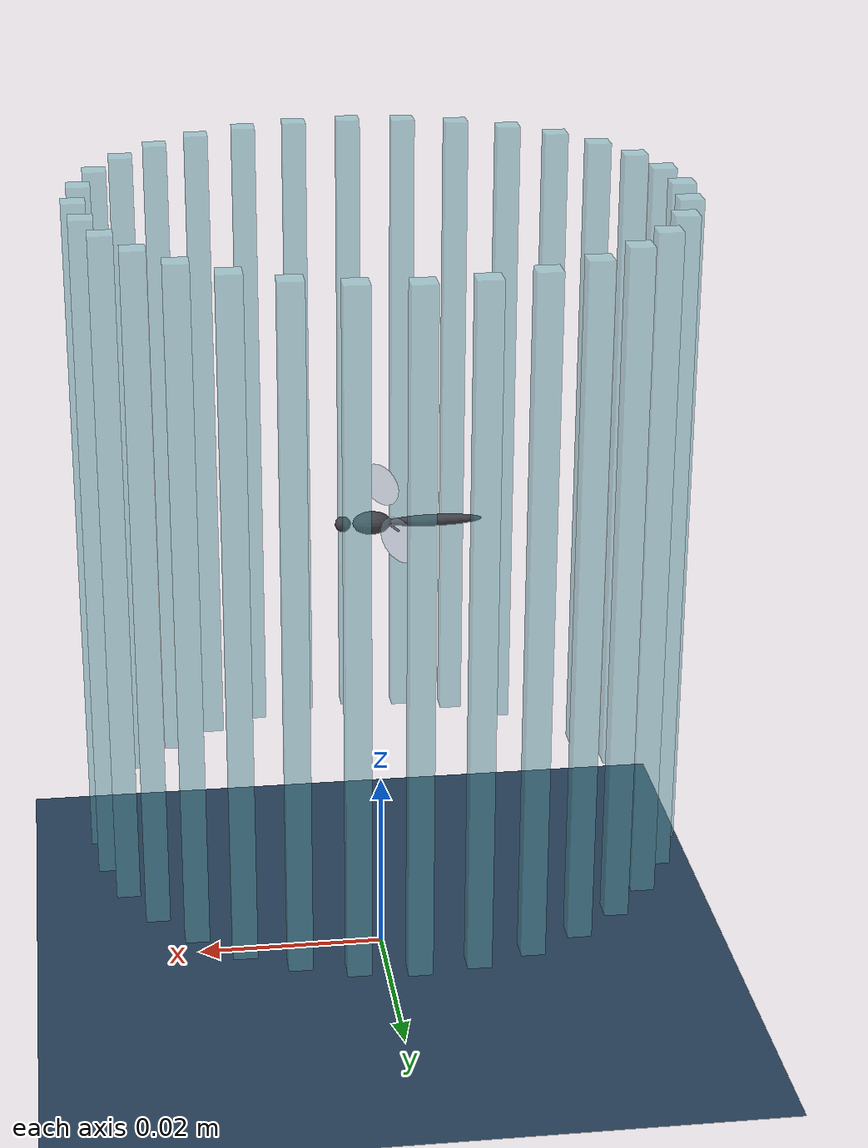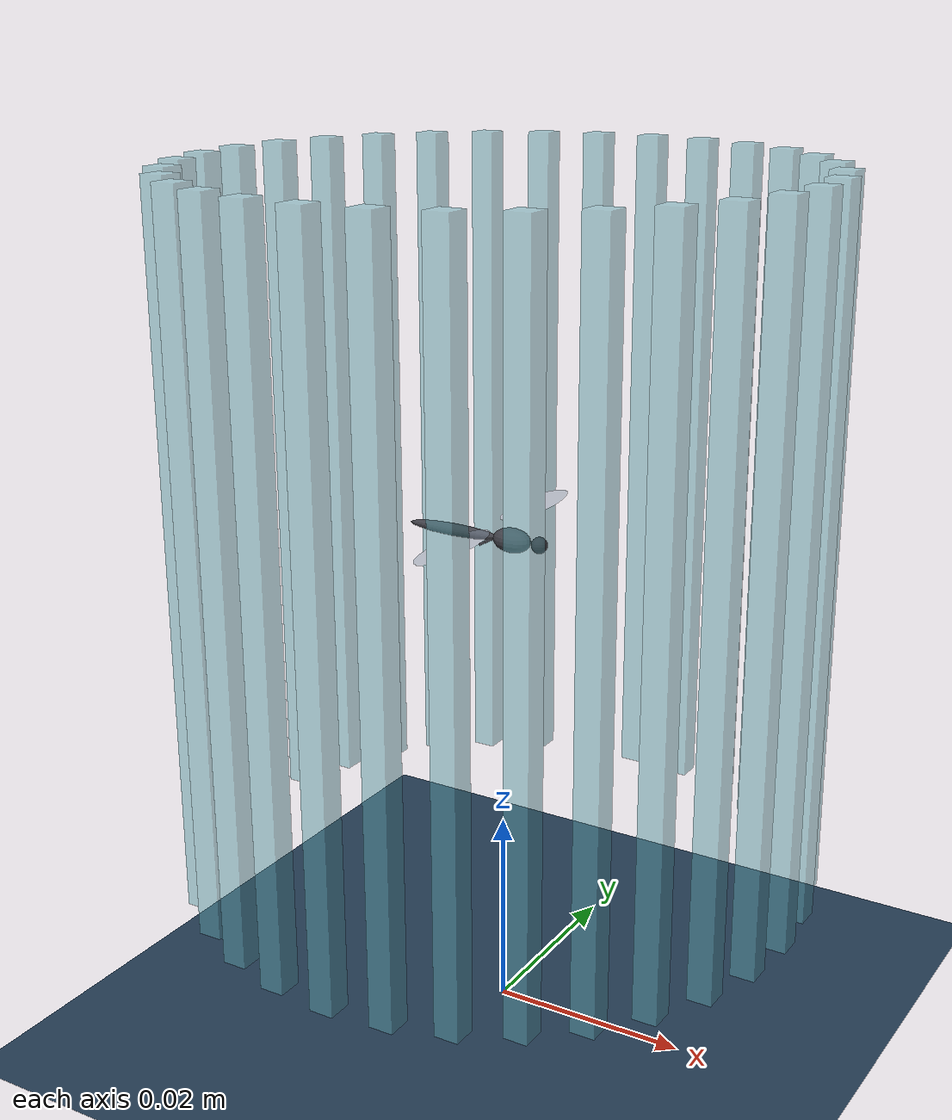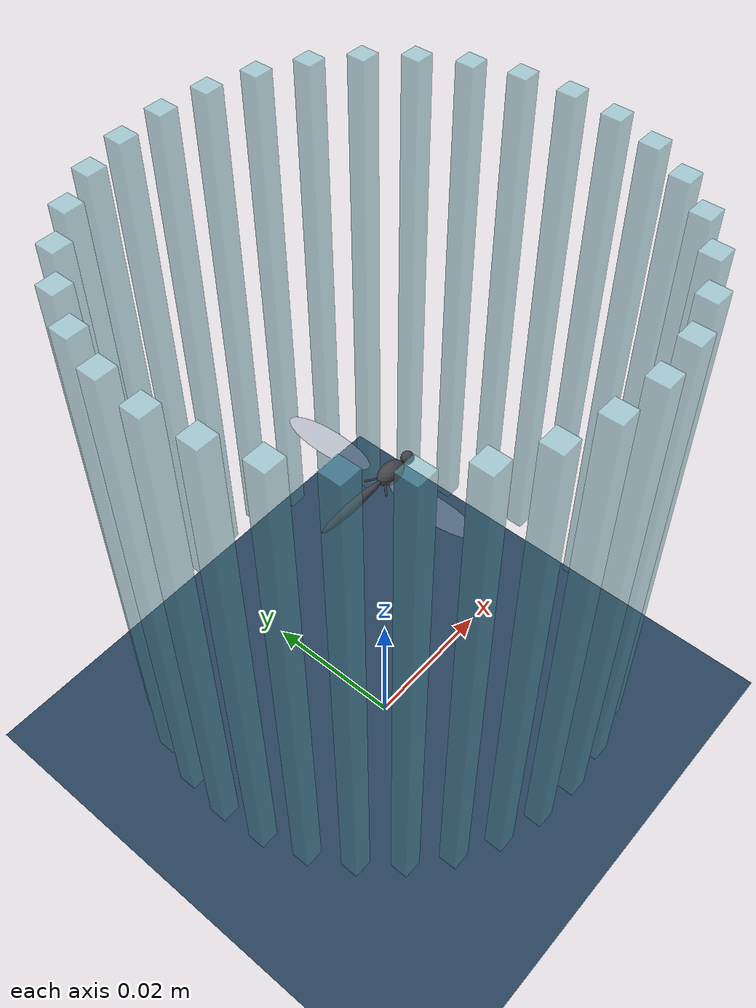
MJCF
<mujoco model="flapping_flyer">

  <option timestep="1e-4" gravity="0 0 -9.81" integrator="implicitfast"/>

  <!-- ===================== VISUALS (menagerie look) ===================== -->
  <visual>
    <headlight diffuse="0.6 0.6 0.6" ambient="0.3 0.3 0.3" specular="0 0 0"/>
    <rgba haze="0.15 0.25 0.35 1"/>
    <global azimuth="120" elevation="-20" offwidth="1280" offheight="960"/>
  </visual>

  <asset>
    <texture type="skybox" builtin="gradient" rgb1="0.3 0.5 0.7" rgb2="0 0 0"
             width="512" height="3072"/>
    <texture type="2d" name="groundplane" builtin="checker" mark="edge"
             rgb1="0.2 0.3 0.4" rgb2="0.1 0.2 0.3" markrgb="0.8 0.8 0.8"
             width="300" height="300"/>
    <material name="groundplane" texture="groundplane" texuniform="true"
              texrepeat="5 5" reflectance="0.2"/>
    <material name="thorax_mat" rgba="0.25 0.25 0.28 1"/>
    <material name="wing_mat"   rgba="0.55 0.62 0.70 0.45"/>
  </asset>

  <default>
    <joint damping="1e-8" armature="0"/>
    <geom density="1200"/>
  </default>

  <worldbody>
    <light pos="0 0 0.3" dir="0 0 -1" directional="true"
           diffuse="0.7 0.7 0.7"/>
    <geom name="floor" type="plane" size="0 0 0.01" material="groundplane"/>
    <geom name="post0" type="box" pos="0.0300 0.0000 0.05" size="0.0012 0.0012 0.035" rgba="0.40 0.70 0.75 0.5" contype="0" conaffinity="0"/>
    <geom name="post1" type="box" pos="0.0294 0.0059 0.05" size="0.0012 0.0012 0.035" rgba="0.40 0.70 0.75 0.5" contype="0" conaffinity="0"/>
    <geom name="post2" type="box" pos="0.0277 0.0115 0.05" size="0.0012 0.0012 0.035" rgba="0.40 0.70 0.75 0.5" contype="0" conaffinity="0"/>
    <geom name="post3" type="box" pos="0.0249 0.0167 0.05" size="0.0012 0.0012 0.035" rgba="0.40 0.70 0.75 0.5" contype="0" conaffinity="0"/>
    <geom name="post4" type="box" pos="0.0212 0.0212 0.05" size="0.0012 0.0012 0.035" rgba="0.40 0.70 0.75 0.5" contype="0" conaffinity="0"/>
    <geom name="post5" type="box" pos="0.0167 0.0249 0.05" size="0.0012 0.0012 0.035" rgba="0.40 0.70 0.75 0.5" contype="0" conaffinity="0"/>
    <geom name="post6" type="box" pos="0.0115 0.0277 0.05" size="0.0012 0.0012 0.035" rgba="0.40 0.70 0.75 0.5" contype="0" conaffinity="0"/>
    <geom name="post7" type="box" pos="0.0059 0.0294 0.05" size="0.0012 0.0012 0.035" rgba="0.40 0.70 0.75 0.5" contype="0" conaffinity="0"/>
    <geom name="post8" type="box" pos="0.0000 0.0300 0.05" size="0.0012 0.0012 0.035" rgba="0.40 0.70 0.75 0.5" contype="0" conaffinity="0"/>
    <geom name="post9" type="box" pos="-0.0059 0.0294 0.05" size="0.0012 0.0012 0.035" rgba="0.40 0.70 0.75 0.5" contype="0" conaffinity="0"/>
    <geom name="post10" type="box" pos="-0.0115 0.0277 0.05" size="0.0012 0.0012 0.035" rgba="0.40 0.70 0.75 0.5" contype="0" conaffinity="0"/>
    <geom name="post11" type="box" pos="-0.0167 0.0249 0.05" size="0.0012 0.0012 0.035" rgba="0.40 0.70 0.75 0.5" contype="0" conaffinity="0"/>
    <geom name="post12" type="box" pos="-0.0212 0.0212 0.05" size="0.0012 0.0012 0.035" rgba="0.40 0.70 0.75 0.5" contype="0" conaffinity="0"/>
    <geom name="post13" type="box" pos="-0.0249 0.0167 0.05" size="0.0012 0.0012 0.035" rgba="0.40 0.70 0.75 0.5" contype="0" conaffinity="0"/>
    <geom name="post14" type="box" pos="-0.0277 0.0115 0.05" size="0.0012 0.0012 0.035" rgba="0.40 0.70 0.75 0.5" contype="0" conaffinity="0"/>
    <geom name="post15" type="box" pos="-0.0294 0.0059 0.05" size="0.0012 0.0012 0.035" rgba="0.40 0.70 0.75 0.5" contype="0" conaffinity="0"/>
    <geom name="post16" type="box" pos="-0.0300 0.0000 0.05" size="0.0012 0.0012 0.035" rgba="0.40 0.70 0.75 0.5" contype="0" conaffinity="0"/>
    <geom name="post17" type="box" pos="-0.0294 -0.0059 0.05" size="0.0012 0.0012 0.035" rgba="0.40 0.70 0.75 0.5" contype="0" conaffinity="0"/>
    <geom name="post18" type="box" pos="-0.0277 -0.0115 0.05" size="0.0012 0.0012 0.035" rgba="0.40 0.70 0.75 0.5" contype="0" conaffinity="0"/>
    <geom name="post19" type="box" pos="-0.0249 -0.0167 0.05" size="0.0012 0.0012 0.035" rgba="0.40 0.70 0.75 0.5" contype="0" conaffinity="0"/>
    <geom name="post20" type="box" pos="-0.0212 -0.0212 0.05" size="0.0012 0.0012 0.035" rgba="0.40 0.70 0.75 0.5" contype="0" conaffinity="0"/>
    <geom name="post21" type="box" pos="-0.0167 -0.0249 0.05" size="0.0012 0.0012 0.035" rgba="0.40 0.70 0.75 0.5" contype="0" conaffinity="0"/>
    <geom name="post22" type="box" pos="-0.0115 -0.0277 0.05" size="0.0012 0.0012 0.035" rgba="0.40 0.70 0.75 0.5" contype="0" conaffinity="0"/>
    <geom name="post23" type="box" pos="-0.0059 -0.0294 0.05" size="0.0012 0.0012 0.035" rgba="0.40 0.70 0.75 0.5" contype="0" conaffinity="0"/>
    <geom name="post24" type="box" pos="-0.0000 -0.0300 0.05" size="0.0012 0.0012 0.035" rgba="0.40 0.70 0.75 0.5" contype="0" conaffinity="0"/>
    <geom name="post25" type="box" pos="0.0059 -0.0294 0.05" size="0.0012 0.0012 0.035" rgba="0.40 0.70 0.75 0.5" contype="0" conaffinity="0"/>
    <geom name="post26" type="box" pos="0.0115 -0.0277 0.05" size="0.0012 0.0012 0.035" rgba="0.40 0.70 0.75 0.5" contype="0" conaffinity="0"/>
    <geom name="post27" type="box" pos="0.0167 -0.0249 0.05" size="0.0012 0.0012 0.035" rgba="0.40 0.70 0.75 0.5" contype="0" conaffinity="0"/>
    <geom name="post28" type="box" pos="0.0212 -0.0212 0.05" size="0.0012 0.0012 0.035" rgba="0.40 0.70 0.75 0.5" contype="0" conaffinity="0"/>
    <geom name="post29" type="box" pos="0.0249 -0.0167 0.05" size="0.0012 0.0012 0.035" rgba="0.40 0.70 0.75 0.5" contype="0" conaffinity="0"/>
    <geom name="post30" type="box" pos="0.0277 -0.0115 0.05" size="0.0012 0.0012 0.035" rgba="0.40 0.70 0.75 0.5" contype="0" conaffinity="0"/>
    <geom name="post31" type="box" pos="0.0294 -0.0059 0.05" size="0.0012 0.0012 0.035" rgba="0.40 0.70 0.75 0.5" contype="0" conaffinity="0"/>

    <body name="thorax" pos="0 0 0.05">

      <!-- main flight mass: thorax block, just below the wing hinges -->
      <geom name="thorax_g" type="ellipsoid" pos="0.001 0 0"
            size="0.0020 0.0012 0.0012" mass="60e-6" material="thorax_mat"/>
      <!-- head: small, forward -->
      <geom name="head_g" type="sphere" pos="0.0040 0 0"
            size="0.0008" mass="3e-6" material="thorax_mat"/>
      <!-- abdomen / tail: long, THIN, LIGHT, trailing aft. Tapered ellipsoid
           reads as an abdomen and gives a little aft area for pitch stability
           at almost no mass cost. -->
      <geom name="tail_g" type="ellipsoid" pos="-0.0055 0 0"
            size="0.0050 0.0006 0.0006" mass="12e-6" material="thorax_mat"/>

      <!-- halteres: tiny nubs just behind the wing bases. Visual now,
           EARMARKED as the future rate sensor. Mass ~0.1 mg each (negligible). -->
      <geom name="haltere_R" type="capsule" fromto="-0.0008 0.0007 0  -0.0016 0.0016 -0.0004"
            size="0.00012" mass="1e-7" material="thorax_mat"/>
      <geom name="haltere_L" type="capsule" fromto="-0.0008 -0.0007 0  -0.0016 -0.0016 -0.0004"
            size="0.00012" mass="1e-7" material="thorax_mat"/>

      <!-- ============ RIGHT WING (extends +y) ============
           shoulder above & right of the thorax centre -->
      <body name="stroke_R" pos="0 0.0010 0.0012">
        <joint name="stroke_R" type="hinge" axis="0 0 1" range="-90 90" armature="1e-8"/>
        <inertial pos="0 0 0" mass="1e-7" diaginertia="1e-13 1e-13 1e-13"/>
        <body name="wing_R" pos="0 0 0">
          <joint name="pitch_R" type="hinge" axis="0 1 0" range="-120 120" armature="1e-8"/>
          <geom name="wing_R_g" type="ellipsoid" pos="-0.000875 0.0066 0"
                size="0.00175 0.0060 0.000025" material="wing_mat"
                mass="1.0e-6"/>
        </body>
      </body>

      <!-- ============ LEFT WING (extends -y) ============ -->
      <body name="stroke_L" pos="0 -0.0010 0.0012">
        <joint name="stroke_L" type="hinge" axis="0 0 1" range="-90 90" armature="1e-8"/>
        <inertial pos="0 0 0" mass="1e-7" diaginertia="1e-13 1e-13 1e-13"/>
        <body name="wing_L" pos="0 0 0">
          <joint name="pitch_L" type="hinge" axis="0 1 0" range="-120 120" armature="1e-8"/>
          <geom name="wing_L_g" type="ellipsoid" pos="-0.000875 -0.0066 0"
                size="0.00175 0.0060 0.000025" material="wing_mat"
                mass="1.0e-6"/>
        </body>
      </body>
    </body>
  </worldbody>

  <!-- Position actuators on the four hinges. Gains kept gentle so they are
       stable under implicitfast; Stage 2 may instead PRESCRIBE kinematics. -->
  <actuator>
    <position name="a_stroke_R" joint="stroke_R" kp="0.01" kv="1e-5"/>
    <position name="a_pitch_R"  joint="pitch_R"  kp="0.01" kv="1e-5"/>
    <position name="a_stroke_L" joint="stroke_L" kp="0.01" kv="1e-5"/>
    <position name="a_pitch_L"  joint="pitch_L"  kp="0.01" kv="1e-5"/>
  </actuator>
</mujoco>
